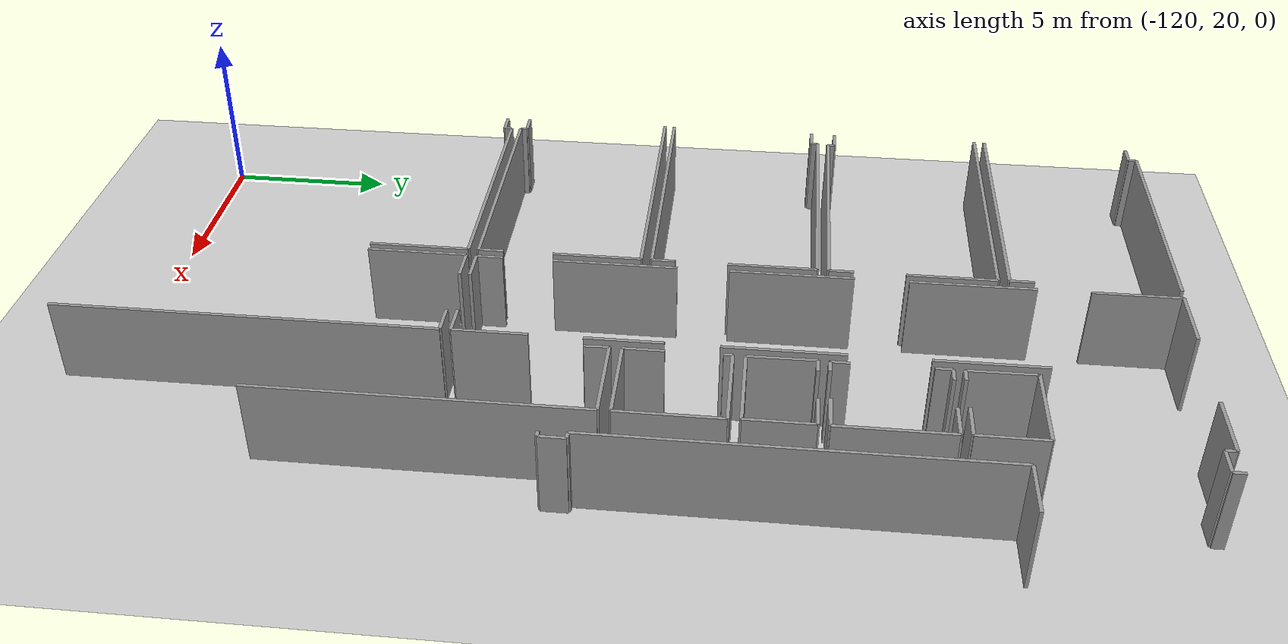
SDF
<sdf version="1.6">
 <world name="default">
  <model name="ground_plane">
   <static>1</static>
   <link name="link">
    <collision name="collision">
     <geometry><plane><normal>0 0 1</normal><size>100 100</size></plane></geometry>
     <surface><friction><ode><mu>100</mu><mu2>50</mu2></ode></friction></surface>
    </collision>
    <visual name="visual">
     <cast_shadows>0</cast_shadows>
     <geometry><plane><normal>0 0 1</normal><size>100 100</size></plane></geometry>
     <material>
      <script><uri>file://media/materials/scripts/gazebo.material</uri><name>Gazebo/Grey</name></script>
     </material>
    </visual>
   </link>
  </model>
  <model name="0510045926_A-40">
   <static>1</static>
   <link name="Wall_624">
    <collision name="Wall_624_Collision">
     <geometry><box><size>7.37211501241 0.1 2.5</size></box></geometry>
     <pose>3.6860575062 0 1.25 0 0 0</pose>
    </collision>
    <visual name="Wall_624_Visual">
     <pose>3.6860575062 0 1.25 0 0 0</pose>
     <geometry><box><size>7.37211501241 0.1 2.5</size></box></geometry>
     <material>
      <script><uri>file://media/materials/scripts/gazebo.material</uri><name>Gazebo/Grey</name></script>
      <ambient>1 1 1 1</ambient>
     </material>
    </visual>
    <pose>13.9335080561 -50.9273716073 0 0 0 0.0</pose>
   </link>
   <link name="Wall_626">
    <collision name="Wall_626_Collision">
     <geometry><box><size>0.708959722813 0.1 2.5</size></box></geometry>
     <pose>0.354479861406 0 1.25 0 0 0</pose>
    </collision>
    <visual name="Wall_626_Visual">
     <pose>0.354479861406 0 1.25 0 0 0</pose>
     <geometry><box><size>0.708959722813 0.1 2.5</size></box></geometry>
     <material>
      <script><uri>file://media/materials/scripts/gazebo.material</uri><name>Gazebo/Grey</name></script>
      <ambient>1 1 1 1</ambient>
     </material>
    </visual>
    <pose>21.3056230685 -55.015883693 0 0 0 -1.57079632679</pose>
   </link>
   <link name="Wall_627">
    <collision name="Wall_627_Collision">
     <geometry><box><size>7.99324800264 0.1 2.5</size></box></geometry>
     <pose>3.99662400132 0 1.25 0 0 0</pose>
    </collision>
    <visual name="Wall_627_Visual">
     <pose>3.99662400132 0 1.25 0 0 0</pose>
     <geometry><box><size>7.99324800264 0.1 2.5</size></box></geometry>
     <material>
      <script><uri>file://media/materials/scripts/gazebo.material</uri><name>Gazebo/Grey</name></script>
      <ambient>1 1 1 1</ambient>
     </material>
    </visual>
    <pose>21.3056230685 -55.7248434159 0 0 0 3.14159265359</pose>
   </link>
   <link name="Wall_628">
    <collision name="Wall_628_Collision">
     <geometry><box><size>0.627478852414 0.1 2.5</size></box></geometry>
     <pose>0.313739426207 0 1.25 0 0 0</pose>
    </collision>
    <visual name="Wall_628_Visual">
     <pose>0.313739426207 0 1.25 0 0 0</pose>
     <geometry><box><size>0.627478852414 0.1 2.5</size></box></geometry>
     <material>
      <script><uri>file://media/materials/scripts/gazebo.material</uri><name>Gazebo/Grey</name></script>
      <ambient>1 1 1 1</ambient>
     </material>
    </visual>
    <pose>13.3123750658 -51.1695297082 0 0 0 0.0</pose>
   </link>
   <link name="Wall_629">
    <collision name="Wall_629_Collision">
     <geometry><box><size>0.24224123463 0.1 2.5</size></box></geometry>
     <pose>0.121120617315 0 1.25 0 0 0</pose>
    </collision>
    <visual name="Wall_629_Visual">
     <pose>0.121120617315 0 1.25 0 0 0</pose>
     <geometry><box><size>0.24224123463 0.1 2.5</size></box></geometry>
     <material>
      <script><uri>file://media/materials/scripts/gazebo.material</uri><name>Gazebo/Grey</name></script>
      <ambient>1 1 1 1</ambient>
     </material>
    </visual>
    <pose>13.9398539183 -51.1695297082 0 0 0 1.59699578135</pose>
   </link>
   <link name="Wall_630">
    <collision name="Wall_630_Collision">
     <geometry><box><size>8.03157701021 0.1 2.5</size></box></geometry>
     <pose>4.01578850511 0 1.25 0 0 0</pose>
    </collision>
    <visual name="Wall_630_Visual">
     <pose>4.01578850511 0 1.25 0 0 0</pose>
     <geometry><box><size>8.03157701021 0.1 2.5</size></box></geometry>
     <material>
      <script><uri>file://media/materials/scripts/gazebo.material</uri><name>Gazebo/Grey</name></script>
      <ambient>1 1 1 1</ambient>
     </material>
    </visual>
    <pose>13.2913068034 -56.050513063 0 0 0 0.0</pose>
   </link>
   <link name="Wall_631">
    <collision name="Wall_631_Collision">
     <geometry><box><size>2.59571146634 0.1 2.5</size></box></geometry>
     <pose>1.29785573317 0 1.25 0 0 0</pose>
    </collision>
    <visual name="Wall_631_Visual">
     <pose>1.29785573317 0 1.25 0 0 0</pose>
     <geometry><box><size>2.59571146634 0.1 2.5</size></box></geometry>
     <material>
      <script><uri>file://media/materials/scripts/gazebo.material</uri><name>Gazebo/Grey</name></script>
      <ambient>1 1 1 1</ambient>
     </material>
    </visual>
    <pose>21.3228838136 -56.050513063 0 0 0 -1.57079632679</pose>
   </link>
   <link name="Wall_632">
    <collision name="Wall_632_Collision">
     <geometry><box><size>0.714036412557 0.1 2.5</size></box></geometry>
     <pose>0.357018206279 0 1.25 0 0 0</pose>
    </collision>
    <visual name="Wall_632_Visual">
     <pose>0.357018206279 0 1.25 0 0 0</pose>
     <geometry><box><size>0.714036412557 0.1 2.5</size></box></geometry>
     <material>
      <script><uri>file://media/materials/scripts/gazebo.material</uri><name>Gazebo/Grey</name></script>
      <ambient>1 1 1 1</ambient>
     </material>
    </visual>
    <pose>21.3228838136 -60.142324997 0 0 0 -1.57079632679</pose>
   </link>
   <link name="Wall_633">
    <collision name="Wall_633_Collision">
     <geometry><box><size>7.36120012946 0.1 2.5</size></box></geometry>
     <pose>3.68060006473 0 1.25 0 0 0</pose>
    </collision>
    <visual name="Wall_633_Visual">
     <pose>3.68060006473 0 1.25 0 0 0</pose>
     <geometry><box><size>7.36120012946 0.1 2.5</size></box></geometry>
     <material>
      <script><uri>file://media/materials/scripts/gazebo.material</uri><name>Gazebo/Grey</name></script>
      <ambient>1 1 1 1</ambient>
     </material>
    </visual>
    <pose>21.3228838136 -60.8563614095 0 0 0 3.14159265359</pose>
   </link>
   <link name="Wall_634">
    <collision name="Wall_634_Collision">
     <geometry><box><size>0.213728638241 0.1 2.5</size></box></geometry>
     <pose>0.106864319121 0 1.25 0 0 0</pose>
    </collision>
    <visual name="Wall_634_Visual">
     <pose>0.106864319121 0 1.25 0 0 0</pose>
     <geometry><box><size>0.213728638241 0.1 2.5</size></box></geometry>
     <material>
      <script><uri>file://media/materials/scripts/gazebo.material</uri><name>Gazebo/Grey</name></script>
      <ambient>1 1 1 1</ambient>
     </material>
    </visual>
    <pose>13.9616836842 -60.8563614095 0 0 0 1.57079632679</pose>
   </link>
   <link name="Wall_635">
    <collision name="Wall_635_Collision">
     <geometry><box><size>0.655908314983 0.1 2.5</size></box></geometry>
     <pose>0.327954157492 0 1.25 0 0 0</pose>
    </collision>
    <visual name="Wall_635_Visual">
     <pose>0.327954157492 0 1.25 0 0 0</pose>
     <geometry><box><size>0.655908314983 0.1 2.5</size></box></geometry>
     <material>
      <script><uri>file://media/materials/scripts/gazebo.material</uri><name>Gazebo/Grey</name></script>
      <ambient>1 1 1 1</ambient>
     </material>
    </visual>
    <pose>13.9616836842 -60.6426327713 0 0 0 3.14159265359</pose>
   </link>
   <link name="Wall_636">
    <collision name="Wall_636_Collision">
     <geometry><box><size>7.37084583997 0.1 2.5</size></box></geometry>
     <pose>3.68542291999 0 1.25 0 0 0</pose>
    </collision>
    <visual name="Wall_636_Visual">
     <pose>3.68542291999 0 1.25 0 0 0</pose>
     <geometry><box><size>7.37084583997 0.1 2.5</size></box></geometry>
     <material>
      <script><uri>file://media/materials/scripts/gazebo.material</uri><name>Gazebo/Grey</name></script>
      <ambient>1 1 1 1</ambient>
     </material>
    </visual>
    <pose>13.9426460976 -61.1898999258 0 0 0 0.0</pose>
   </link>
   <link name="Wall_637">
    <collision name="Wall_637_Collision">
     <geometry><box><size>2.58403507993 0.1 2.5</size></box></geometry>
     <pose>1.29201753996 0 1.25 0 0 0</pose>
    </collision>
    <visual name="Wall_637_Visual">
     <pose>1.29201753996 0 1.25 0 0 0</pose>
     <geometry><box><size>2.58403507993 0.1 2.5</size></box></geometry>
     <material>
      <script><uri>file://media/materials/scripts/gazebo.material</uri><name>Gazebo/Grey</name></script>
      <ambient>1 1 1 1</ambient>
     </material>
    </visual>
    <pose>21.3134919376 -61.1898999258 0 0 0 -1.57079632679</pose>
   </link>
   <link name="Wall_638">
    <collision name="Wall_638_Collision">
     <geometry><box><size>0.691698977682 0.1 2.5</size></box></geometry>
     <pose>0.345849488841 0 1.25 0 0 0</pose>
    </collision>
    <visual name="Wall_638_Visual">
     <pose>0.345849488841 0 1.25 0 0 0</pose>
     <geometry><box><size>0.691698977682 0.1 2.5</size></box></geometry>
     <material>
      <script><uri>file://media/materials/scripts/gazebo.material</uri><name>Gazebo/Grey</name></script>
      <ambient>1 1 1 1</ambient>
     </material>
    </visual>
    <pose>21.3134919376 -65.3007494463 0 0 0 -1.57079632679</pose>
   </link>
   <link name="Wall_639">
    <collision name="Wall_639_Collision">
     <geometry><box><size>8.02015445829 0.1 2.5</size></box></geometry>
     <pose>4.01007722914 0 1.25 0 0 0</pose>
    </collision>
    <visual name="Wall_639_Visual">
     <pose>4.01007722914 0 1.25 0 0 0</pose>
     <geometry><box><size>8.02015445829 0.1 2.5</size></box></geometry>
     <material>
      <script><uri>file://media/materials/scripts/gazebo.material</uri><name>Gazebo/Grey</name></script>
      <ambient>1 1 1 1</ambient>
     </material>
    </visual>
    <pose>21.3134919376 -65.992448424 0 0 0 3.14159265359</pose>
   </link>
   <link name="Wall_640">
    <collision name="Wall_640_Collision">
     <geometry><box><size>0.635093887031 0.1 2.5</size></box></geometry>
     <pose>0.317546943515 0 1.25 0 0 0</pose>
    </collision>
    <visual name="Wall_640_Visual">
     <pose>0.317546943515 0 1.25 0 0 0</pose>
     <geometry><box><size>0.635093887031 0.1 2.5</size></box></geometry>
     <material>
      <script><uri>file://media/materials/scripts/gazebo.material</uri><name>Gazebo/Grey</name></script>
      <ambient>1 1 1 1</ambient>
     </material>
    </visual>
    <pose>13.2933374793 -61.3998210467 0 0 0 0.0</pose>
   </link>
   <link name="Wall_641">
    <collision name="Wall_641_Collision">
     <geometry><box><size>0.210401843146 0.1 2.5</size></box></geometry>
     <pose>0.105200921573 0 1.25 0 0 0</pose>
    </collision>
    <visual name="Wall_641_Visual">
     <pose>0.105200921573 0 1.25 0 0 0</pose>
     <geometry><box><size>0.210401843146 0.1 2.5</size></box></geometry>
     <material>
      <script><uri>file://media/materials/scripts/gazebo.material</uri><name>Gazebo/Grey</name></script>
      <ambient>1 1 1 1</ambient>
     </material>
    </visual>
    <pose>13.9284313663 -61.3998210467 0 0 0 1.50318490844</pose>
   </link>
   <link name="Wall_642">
    <collision name="Wall_642_Collision">
     <geometry><box><size>8.02421581008 0.1 2.5</size></box></geometry>
     <pose>4.01210790504 0 1.25 0 0 0</pose>
    </collision>
    <visual name="Wall_642_Visual">
     <pose>4.01210790504 0 1.25 0 0 0</pose>
     <geometry><box><size>8.02421581008 0.1 2.5</size></box></geometry>
     <material>
      <script><uri>file://media/materials/scripts/gazebo.material</uri><name>Gazebo/Grey</name></script>
      <ambient>1 1 1 1</ambient>
     </material>
    </visual>
    <pose>13.2852147757 -66.3069493537 0 0 0 0.0</pose>
   </link>
   <link name="Wall_643">
    <collision name="Wall_643_Collision">
     <geometry><box><size>2.60332650096 0.1 2.5</size></box></geometry>
     <pose>1.30166325048 0 1.25 0 0 0</pose>
    </collision>
    <visual name="Wall_643_Visual">
     <pose>1.30166325048 0 1.25 0 0 0</pose>
     <geometry><box><size>2.60332650096 0.1 2.5</size></box></geometry>
     <material>
      <script><uri>file://media/materials/scripts/gazebo.material</uri><name>Gazebo/Grey</name></script>
      <ambient>1 1 1 1</ambient>
     </material>
    </visual>
    <pose>21.3094305858 -66.3069493537 0 0 0 -1.57079632679</pose>
   </link>
   <link name="Wall_644">
    <collision name="Wall_644_Collision">
     <geometry><box><size>0.739166026792 0.1 2.5</size></box></geometry>
     <pose>0.369583013396 0 1.25 0 0 0</pose>
    </collision>
    <visual name="Wall_644_Visual">
     <pose>0.369583013396 0 1.25 0 0 0</pose>
     <geometry><box><size>0.739166026792 0.1 2.5</size></box></geometry>
     <material>
      <script><uri>file://media/materials/scripts/gazebo.material</uri><name>Gazebo/Grey</name></script>
      <ambient>1 1 1 1</ambient>
     </material>
    </visual>
    <pose>21.3094305858 -70.3789621977 0 0 0 -1.57079632679</pose>
   </link>
   <link name="Wall_645">
    <collision name="Wall_645_Collision">
     <geometry><box><size>7.37541486074 0.1 2.5</size></box></geometry>
     <pose>3.68770743037 0 1.25 0 0 0</pose>
    </collision>
    <visual name="Wall_645_Visual">
     <pose>3.68770743037 0 1.25 0 0 0</pose>
     <geometry><box><size>7.37541486074 0.1 2.5</size></box></geometry>
     <material>
      <script><uri>file://media/materials/scripts/gazebo.material</uri><name>Gazebo/Grey</name></script>
      <ambient>1 1 1 1</ambient>
     </material>
    </visual>
    <pose>21.3094305858 -71.1181282245 0 0 0 3.14159265359</pose>
   </link>
   <link name="Wall_646">
    <collision name="Wall_646_Collision">
     <geometry><box><size>0.208651948497 0.1 2.5</size></box></geometry>
     <pose>0.104325974248 0 1.25 0 0 0</pose>
    </collision>
    <visual name="Wall_646_Visual">
     <pose>0.104325974248 0 1.25 0 0 0</pose>
     <geometry><box><size>0.208651948497 0.1 2.5</size></box></geometry>
     <material>
      <script><uri>file://media/materials/scripts/gazebo.material</uri><name>Gazebo/Grey</name></script>
      <ambient>1 1 1 1</ambient>
     </material>
    </visual>
    <pose>13.934015725 -71.1181282245 0 0 0 1.57079632679</pose>
   </link>
   <link name="Wall_647">
    <collision name="Wall_647_Collision">
     <geometry><box><size>0.640424411263 0.1 2.5</size></box></geometry>
     <pose>0.320212205631 0 1.25 0 0 0</pose>
    </collision>
    <visual name="Wall_647_Visual">
     <pose>0.320212205631 0 1.25 0 0 0</pose>
     <geometry><box><size>0.640424411263 0.1 2.5</size></box></geometry>
     <material>
      <script><uri>file://media/materials/scripts/gazebo.material</uri><name>Gazebo/Grey</name></script>
      <ambient>1 1 1 1</ambient>
     </material>
    </visual>
    <pose>13.934015725 -70.909476276 0 0 0 3.14159265359</pose>
   </link>
   <link name="Wall_651">
    <collision name="Wall_651_Collision">
     <geometry><box><size>2.62084108057 0.1 2.5</size></box></geometry>
     <pose>1.31042054029 0 1.25 0 0 0</pose>
    </collision>
    <visual name="Wall_651_Visual">
     <pose>1.31042054029 0 1.25 0 0 0</pose>
     <geometry><box><size>2.62084108057 0.1 2.5</size></box></geometry>
     <material>
      <script><uri>file://media/materials/scripts/gazebo.material</uri><name>Gazebo/Grey</name></script>
      <ambient>1 1 1 1</ambient>
     </material>
    </visual>
    <pose>25.5994872543 -66.7265377611 0 0 0 0.0</pose>
   </link>
   <link name="Wall_652">
    <collision name="Wall_652_Collision">
     <geometry><box><size>9.40076023429 0.1 2.5</size></box></geometry>
     <pose>4.70038011714 0 1.25 0 0 0</pose>
    </collision>
    <visual name="Wall_652_Visual">
     <pose>4.70038011714 0 1.25 0 0 0</pose>
     <geometry><box><size>9.40076023429 0.1 2.5</size></box></geometry>
     <material>
      <script><uri>file://media/materials/scripts/gazebo.material</uri><name>Gazebo/Grey</name></script>
      <ambient>1 1 1 1</ambient>
     </material>
    </visual>
    <pose>28.2203283349 -66.7265377611 0 0 0 -1.57079632679</pose>
   </link>
   <link name="Wall_654">
    <collision name="Wall_654_Collision">
     <geometry><box><size>0.69102852971 0.1 2.5</size></box></geometry>
     <pose>0.345514264855 0 1.25 0 0 0</pose>
    </collision>
    <visual name="Wall_654_Visual">
     <pose>0.345514264855 0 1.25 0 0 0</pose>
     <geometry><box><size>0.69102852971 0.1 2.5</size></box></geometry>
     <material>
      <script><uri>file://media/materials/scripts/gazebo.material</uri><name>Gazebo/Grey</name></script>
      <ambient>1 1 1 1</ambient>
     </material>
    </visual>
    <pose>25.6213170202 -67.4172214008 0 0 0 1.60239183611</pose>
   </link>
   <link name="Wall_655">
    <collision name="Wall_655_Collision">
     <geometry><box><size>2.62896378416 0.1 2.5</size></box></geometry>
     <pose>1.31448189208 0 1.25 0 0 0</pose>
    </collision>
    <visual name="Wall_655_Visual">
     <pose>1.31448189208 0 1.25 0 0 0</pose>
     <geometry><box><size>2.62896378416 0.1 2.5</size></box></geometry>
     <material>
      <script><uri>file://media/materials/scripts/gazebo.material</uri><name>Gazebo/Grey</name></script>
      <ambient>1 1 1 1</ambient>
     </material>
    </visual>
    <pose>25.5916183852 -63.4190743925 0 0 0 0.0</pose>
   </link>
   <link name="Wall_656">
    <collision name="Wall_656_Collision">
     <geometry><box><size>2.95793327961 0.1 2.5</size></box></geometry>
     <pose>1.4789666398 0 1.25 0 0 0</pose>
    </collision>
    <visual name="Wall_656_Visual">
     <pose>1.4789666398 0 1.25 0 0 0</pose>
     <geometry><box><size>2.95793327961 0.1 2.5</size></box></geometry>
     <material>
      <script><uri>file://media/materials/scripts/gazebo.material</uri><name>Gazebo/Grey</name></script>
      <ambient>1 1 1 1</ambient>
     </material>
    </visual>
    <pose>28.2205821694 -63.4190743925 0 0 0 -1.57079632679</pose>
   </link>
   <link name="Wall_657">
    <collision name="Wall_657_Collision">
     <geometry><box><size>2.6124645425 0.1 2.5</size></box></geometry>
     <pose>1.30623227125 0 1.25 0 0 0</pose>
    </collision>
    <visual name="Wall_657_Visual">
     <pose>1.30623227125 0 1.25 0 0 0</pose>
     <geometry><box><size>2.6124645425 0.1 2.5</size></box></geometry>
     <material>
      <script><uri>file://media/materials/scripts/gazebo.material</uri><name>Gazebo/Grey</name></script>
      <ambient>1 1 1 1</ambient>
     </material>
    </visual>
    <pose>28.2205821694 -66.3770076721 0 0 0 3.14159265359</pose>
   </link>
   <link name="Wall_658">
    <collision name="Wall_658_Collision">
     <geometry><box><size>1.14682421327 0.1 2.5</size></box></geometry>
     <pose>0.573412106636 0 1.25 0 0 0</pose>
    </collision>
    <visual name="Wall_658_Visual">
     <pose>0.573412106636 0 1.25 0 0 0</pose>
     <geometry><box><size>1.14682421327 0.1 2.5</size></box></geometry>
     <material>
      <script><uri>file://media/materials/scripts/gazebo.material</uri><name>Gazebo/Grey</name></script>
      <ambient>1 1 1 1</ambient>
     </material>
    </visual>
    <pose>25.6081176269 -66.3770076721 0 0 0 1.57079632679</pose>
   </link>
   <link name="Wall_659">
    <collision name="Wall_659_Collision">
     <geometry><box><size>0.244239037097 0.1 2.5</size></box></geometry>
     <pose>0.122119518548 0 1.25 0 0 0</pose>
    </collision>
    <visual name="Wall_659_Visual">
     <pose>0.122119518548 0 1.25 0 0 0</pose>
     <geometry><box><size>0.244239037097 0.1 2.5</size></box></geometry>
     <material>
      <script><uri>file://media/materials/scripts/gazebo.material</uri><name>Gazebo/Grey</name></script>
      <ambient>1 1 1 1</ambient>
     </material>
    </visual>
    <pose>25.6081176269 -63.6627555003 0 0 0 1.63840147603</pose>
   </link>
   <link name="Wall_660">
    <collision name="Wall_660_Collision">
     <geometry><box><size>0.466293953028 0.1 2.5</size></box></geometry>
     <pose>0.233146976514 0 1.25 0 0 0</pose>
    </collision>
    <visual name="Wall_660_Visual">
     <pose>0.233146976514 0 1.25 0 0 0</pose>
     <geometry><box><size>0.466293953028 0.1 2.5</size></box></geometry>
     <material>
      <script><uri>file://media/materials/scripts/gazebo.material</uri><name>Gazebo/Grey</name></script>
      <ambient>1 1 1 1</ambient>
     </material>
    </visual>
    <pose>25.5916183852 -61.1541092631 0 0 0 0.0</pose>
   </link>
   <link name="Wall_661">
    <collision name="Wall_661_Collision">
     <geometry><box><size>1.01990696966 0.1 2.5</size></box></geometry>
     <pose>0.50995348483 0 1.25 0 0 0</pose>
    </collision>
    <visual name="Wall_661_Visual">
     <pose>0.50995348483 0 1.25 0 0 0</pose>
     <geometry><box><size>1.01990696966 0.1 2.5</size></box></geometry>
     <material>
      <script><uri>file://media/materials/scripts/gazebo.material</uri><name>Gazebo/Grey</name></script>
      <ambient>1 1 1 1</ambient>
     </material>
    </visual>
    <pose>27.1735149096 -61.1541092631 0 0 0 0.0</pose>
   </link>
   <link name="Wall_662">
    <collision name="Wall_662_Collision">
     <geometry><box><size>1.91568887507 0.1 2.5</size></box></geometry>
     <pose>0.957844437535 0 1.25 0 0 0</pose>
    </collision>
    <visual name="Wall_662_Visual">
     <pose>0.957844437535 0 1.25 0 0 0</pose>
     <geometry><box><size>1.91568887507 0.1 2.5</size></box></geometry>
     <material>
      <script><uri>file://media/materials/scripts/gazebo.material</uri><name>Gazebo/Grey</name></script>
      <ambient>1 1 1 1</ambient>
     </material>
    </visual>
    <pose>28.1934218793 -61.1541092631 0 0 0 -1.57079632679</pose>
   </link>
   <link name="Wall_663">
    <collision name="Wall_663_Collision">
     <geometry><box><size>2.58428891441 0.1 2.5</size></box></geometry>
     <pose>1.29214445721 0 1.25 0 0 0</pose>
    </collision>
    <visual name="Wall_663_Visual">
     <pose>1.29214445721 0 1.25 0 0 0</pose>
     <geometry><box><size>2.58428891441 0.1 2.5</size></box></geometry>
     <material>
      <script><uri>file://media/materials/scripts/gazebo.material</uri><name>Gazebo/Grey</name></script>
      <ambient>1 1 1 1</ambient>
     </material>
    </visual>
    <pose>28.1934218793 -63.0697981381 0 0 0 3.14159265359</pose>
   </link>
   <link name="Wall_664">
    <collision name="Wall_664_Collision">
     <geometry><box><size>1.91576893872 0.1 2.5</size></box></geometry>
     <pose>0.95788446936 0 1.25 0 0 0</pose>
    </collision>
    <visual name="Wall_664_Visual">
     <pose>0.95788446936 0 1.25 0 0 0</pose>
     <geometry><box><size>1.91576893872 0.1 2.5</size></box></geometry>
     <material>
      <script><uri>file://media/materials/scripts/gazebo.material</uri><name>Gazebo/Grey</name></script>
      <ambient>1 1 1 1</ambient>
     </material>
    </visual>
    <pose>25.6091329649 -63.0697981381 0 0 0 1.57993877778</pose>
   </link>
   <link name="Wall_665">
    <collision name="Wall_665_Collision">
     <geometry><box><size>2.60459567339 0.1 2.5</size></box></geometry>
     <pose>1.3022978367 0 1.25 0 0 0</pose>
    </collision>
    <visual name="Wall_665_Visual">
     <pose>1.3022978367 0 1.25 0 0 0</pose>
     <geometry><box><size>2.60459567339 0.1 2.5</size></box></geometry>
     <material>
      <script><uri>file://media/materials/scripts/gazebo.material</uri><name>Gazebo/Grey</name></script>
      <ambient>1 1 1 1</ambient>
     </material>
    </visual>
    <pose>25.6005025923 -55.3905433962 0 0 0 0.0</pose>
   </link>
   <link name="Wall_666">
    <collision name="Wall_666_Collision">
     <geometry><box><size>1.92279624071 0.1 2.5</size></box></geometry>
     <pose>0.961398120356 0 1.25 0 0 0</pose>
    </collision>
    <visual name="Wall_666_Visual">
     <pose>0.961398120356 0 1.25 0 0 0</pose>
     <geometry><box><size>1.92279624071 0.1 2.5</size></box></geometry>
     <material>
      <script><uri>file://media/materials/scripts/gazebo.material</uri><name>Gazebo/Grey</name></script>
      <ambient>1 1 1 1</ambient>
     </material>
    </visual>
    <pose>28.2050982657 -55.3905433962 0 0 0 -1.57079632679</pose>
   </link>
   <link name="Wall_667">
    <collision name="Wall_667_Collision">
     <geometry><box><size>1.07042003262 0.1 2.5</size></box></geometry>
     <pose>0.535210016309 0 1.25 0 0 0</pose>
    </collision>
    <visual name="Wall_667_Visual">
     <pose>0.535210016309 0 1.25 0 0 0</pose>
     <geometry><box><size>1.07042003262 0.1 2.5</size></box></geometry>
     <material>
      <script><uri>file://media/materials/scripts/gazebo.material</uri><name>Gazebo/Grey</name></script>
      <ambient>1 1 1 1</ambient>
     </material>
    </visual>
    <pose>28.2050982657 -57.3133396369 0 0 0 3.14159265359</pose>
   </link>
   <link name="Wall_668">
    <collision name="Wall_668_Collision">
     <geometry><box><size>0.401819993273 0.1 2.5</size></box></geometry>
     <pose>0.200909996637 0 1.25 0 0 0</pose>
    </collision>
    <visual name="Wall_668_Visual">
     <pose>0.200909996637 0 1.25 0 0 0</pose>
     <geometry><box><size>0.401819993273 0.1 2.5</size></box></geometry>
     <material>
      <script><uri>file://media/materials/scripts/gazebo.material</uri><name>Gazebo/Grey</name></script>
      <ambient>1 1 1 1</ambient>
     </material>
    </visual>
    <pose>26.0165373168 -57.3133396369 0 0 0 3.14159265359</pose>
   </link>
   <link name="Wall_669">
    <collision name="Wall_669_Collision">
     <geometry><box><size>1.92284878289 0.1 2.5</size></box></geometry>
     <pose>0.961424391447 0 1.25 0 0 0</pose>
    </collision>
    <visual name="Wall_669_Visual">
     <pose>0.961424391447 0 1.25 0 0 0</pose>
     <geometry><box><size>1.92284878289 0.1 2.5</size></box></geometry>
     <material>
      <script><uri>file://media/materials/scripts/gazebo.material</uri><name>Gazebo/Grey</name></script>
      <ambient>1 1 1 1</ambient>
     </material>
    </visual>
    <pose>25.6147173236 -57.3133396369 0 0 0 1.5781889314</pose>
   </link>
   <link name="Wall_670">
    <collision name="Wall_670_Collision">
     <geometry><box><size>0.44141817328 0.1 2.5</size></box></geometry>
     <pose>0.22070908664 0 1.25 0 0 0</pose>
    </collision>
    <visual name="Wall_670_Visual">
     <pose>0.22070908664 0 1.25 0 0 0</pose>
     <geometry><box><size>0.44141817328 0.1 2.5</size></box></geometry>
     <material>
      <script><uri>file://media/materials/scripts/gazebo.material</uri><name>Gazebo/Grey</name></script>
      <ambient>1 1 1 1</ambient>
     </material>
    </visual>
    <pose>25.5999949233 -57.6268252286 0 0 0 0.0</pose>
   </link>
   <link name="Wall_671">
    <collision name="Wall_671_Collision">
     <geometry><box><size>1.05671297031 0.1 2.5</size></box></geometry>
     <pose>0.528356485154 0 1.25 0 0 0</pose>
    </collision>
    <visual name="Wall_671_Visual">
     <pose>0.528356485154 0 1.25 0 0 0</pose>
     <geometry><box><size>1.05671297031 0.1 2.5</size></box></geometry>
     <material>
      <script><uri>file://media/materials/scripts/gazebo.material</uri><name>Gazebo/Grey</name></script>
      <ambient>1 1 1 1</ambient>
     </material>
    </visual>
    <pose>27.1567618334 -57.6268252286 0 0 0 0.0</pose>
   </link>
   <link name="Wall_672">
    <collision name="Wall_672_Collision">
     <geometry><box><size>3.21151393234 0.1 2.5</size></box></geometry>
     <pose>1.60575696617 0 1.25 0 0 0</pose>
    </collision>
    <visual name="Wall_672_Visual">
     <pose>1.60575696617 0 1.25 0 0 0</pose>
     <geometry><box><size>3.21151393234 0.1 2.5</size></box></geometry>
     <material>
      <script><uri>file://media/materials/scripts/gazebo.material</uri><name>Gazebo/Grey</name></script>
      <ambient>1 1 1 1</ambient>
     </material>
    </visual>
    <pose>28.2134748038 -57.6268252286 0 0 0 -1.57079632679</pose>
   </link>
   <link name="Wall_673">
    <collision name="Wall_673_Collision">
     <geometry><box><size>1.08336559147 0.1 2.5</size></box></geometry>
     <pose>0.541682795733 0 1.25 0 0 0</pose>
    </collision>
    <visual name="Wall_673_Visual">
     <pose>0.541682795733 0 1.25 0 0 0</pose>
     <geometry><box><size>1.08336559147 0.1 2.5</size></box></geometry>
     <material>
      <script><uri>file://media/materials/scripts/gazebo.material</uri><name>Gazebo/Grey</name></script>
      <ambient>1 1 1 1</ambient>
     </material>
    </visual>
    <pose>28.2134748038 -60.838339161 0 0 0 3.14159265359</pose>
   </link>
   <link name="Wall_674">
    <collision name="Wall_674_Collision">
     <geometry><box><size>0.398266310452 0.1 2.5</size></box></geometry>
     <pose>0.199133155226 0 1.25 0 0 0</pose>
    </collision>
    <visual name="Wall_674_Visual">
     <pose>0.199133155226 0 1.25 0 0 0</pose>
     <geometry><box><size>0.398266310452 0.1 2.5</size></box></geometry>
     <material>
      <script><uri>file://media/materials/scripts/gazebo.material</uri><name>Gazebo/Grey</name></script>
      <ambient>1 1 1 1</ambient>
     </material>
    </visual>
    <pose>26.0086684477 -60.838339161 0 0 0 3.14159265359</pose>
   </link>
   <link name="Wall_675">
    <collision name="Wall_675_Collision">
     <geometry><box><size>0.532544754193 0.1 2.5</size></box></geometry>
     <pose>0.266272377097 0 1.25 0 0 0</pose>
    </collision>
    <visual name="Wall_675_Visual">
     <pose>0.266272377097 0 1.25 0 0 0</pose>
     <geometry><box><size>0.532544754193 0.1 2.5</size></box></geometry>
     <material>
      <script><uri>file://media/materials/scripts/gazebo.material</uri><name>Gazebo/Grey</name></script>
      <ambient>1 1 1 1</ambient>
     </material>
    </visual>
    <pose>25.6104021373 -60.838339161 0 0 0 1.57079632679</pose>
   </link>
   <link name="Wall_676">
    <collision name="Wall_676_Collision">
     <geometry><box><size>0.474023246975 0.1 2.5</size></box></geometry>
     <pose>0.237011623488 0 1.25 0 0 0</pose>
    </collision>
    <visual name="Wall_676_Visual">
     <pose>0.237011623488 0 1.25 0 0 0</pose>
     <geometry><box><size>0.474023246975 0.1 2.5</size></box></geometry>
     <material>
      <script><uri>file://media/materials/scripts/gazebo.material</uri><name>Gazebo/Grey</name></script>
      <ambient>1 1 1 1</ambient>
     </material>
    </visual>
    <pose>25.6104021373 -58.1007342163 0 0 0 1.59275316185</pose>
   </link>
   <link name="Wall_710">
    <collision name="Wall_710_Collision">
     <geometry><box><size>0.194437217213 0.1 2.5</size></box></geometry>
     <pose>0.0972186086063 0 1.25 0 0 0</pose>
    </collision>
    <visual name="Wall_710_Visual">
     <pose>0.0972186086063 0 1.25 0 0 0</pose>
     <geometry><box><size>0.194437217213 0.1 2.5</size></box></geometry>
     <material>
      <script><uri>file://media/materials/scripts/gazebo.material</uri><name>Gazebo/Grey</name></script>
      <ambient>1 1 1 1</ambient>
     </material>
    </visual>
    <pose>29.1866762278 -68.0853137712 0 0 0 0.0</pose>
   </link>
   <link name="Wall_711">
    <collision name="Wall_711_Collision">
     <geometry><box><size>0.752873089102 0.1 2.5</size></box></geometry>
     <pose>0.376436544551 0 1.25 0 0 0</pose>
    </collision>
    <visual name="Wall_711_Visual">
     <pose>0.376436544551 0 1.25 0 0 0</pose>
     <geometry><box><size>0.752873089102 0.1 2.5</size></box></geometry>
     <material>
      <script><uri>file://media/materials/scripts/gazebo.material</uri><name>Gazebo/Grey</name></script>
      <ambient>1 1 1 1</ambient>
     </material>
    </visual>
    <pose>29.381113445 -68.0853137712 0 0 0 1.57079632679</pose>
   </link>
   <link name="Wall_712">
    <collision name="Wall_712_Collision">
     <geometry><box><size>0.219566831448 0.1 2.5</size></box></geometry>
     <pose>0.109783415724 0 1.25 0 0 0</pose>
    </collision>
    <visual name="Wall_712_Visual">
     <pose>0.109783415724 0 1.25 0 0 0</pose>
     <geometry><box><size>0.219566831448 0.1 2.5</size></box></geometry>
     <material>
      <script><uri>file://media/materials/scripts/gazebo.material</uri><name>Gazebo/Grey</name></script>
      <ambient>1 1 1 1</ambient>
     </material>
    </visual>
    <pose>29.381113445 -67.3324406821 0 0 0 3.14159265359</pose>
   </link>
   <link name="Wall_713">
    <collision name="Wall_713_Collision">
     <geometry><box><size>11.3565549583 0.1 2.5</size></box></geometry>
     <pose>5.67827747917 0 1.25 0 0 0</pose>
    </collision>
    <visual name="Wall_713_Visual">
     <pose>5.67827747917 0 1.25 0 0 0</pose>
     <geometry><box><size>11.3565549583 0.1 2.5</size></box></geometry>
     <material>
      <script><uri>file://media/materials/scripts/gazebo.material</uri><name>Gazebo/Grey</name></script>
      <ambient>1 1 1 1</ambient>
     </material>
    </visual>
    <pose>29.1615466135 -67.3324406821 0 0 0 1.57079632679</pose>
   </link>
   <link name="Wall_714">
    <collision name="Wall_714_Collision">
     <geometry><box><size>1.64383213925 0.1 2.5</size></box></geometry>
     <pose>0.821916069627 0 1.25 0 0 0</pose>
    </collision>
    <visual name="Wall_714_Visual">
     <pose>0.821916069627 0 1.25 0 0 0</pose>
     <geometry><box><size>1.64383213925 0.1 2.5</size></box></geometry>
     <material>
      <script><uri>file://media/materials/scripts/gazebo.material</uri><name>Gazebo/Grey</name></script>
      <ambient>1 1 1 1</ambient>
     </material>
    </visual>
    <pose>29.1615466135 -55.9758857237 0 0 0 0.0</pose>
   </link>
   <link name="Wall_744">
    <collision name="Wall_744_Collision">
     <geometry><box><size>3.1069341236 0.1 2.5</size></box></geometry>
     <pose>1.5534670618 0 1.25 0 0 0</pose>
    </collision>
    <visual name="Wall_744_Visual">
     <pose>1.5534670618 0 1.25 0 0 0</pose>
     <geometry><box><size>3.1069341236 0.1 2.5</size></box></geometry>
     <material>
      <script><uri>file://media/materials/scripts/gazebo.material</uri><name>Gazebo/Grey</name></script>
      <ambient>1 1 1 1</ambient>
     </material>
    </visual>
    <pose>25.2644257312 -55.0397441348 0 0 0 -1.57079632679</pose>
   </link>
   <link name="Wall_745">
    <collision name="Wall_745_Collision">
     <geometry><box><size>3.4049358116 0.1 2.5</size></box></geometry>
     <pose>1.7024679058 0 1.25 0 0 0</pose>
    </collision>
    <visual name="Wall_745_Visual">
     <pose>1.7024679058 0 1.25 0 0 0</pose>
     <geometry><box><size>3.4049358116 0.1 2.5</size></box></geometry>
     <material>
      <script><uri>file://media/materials/scripts/gazebo.material</uri><name>Gazebo/Grey</name></script>
      <ambient>1 1 1 1</ambient>
     </material>
    </visual>
    <pose>25.2644257312 -60.3639225043 0 0 0 -1.57079632679</pose>
   </link>
   <link name="Wall_746">
    <collision name="Wall_746_Collision">
     <geometry><box><size>2.21521356999 0.1 2.5</size></box></geometry>
     <pose>1.107606785 0 1.25 0 0 0</pose>
    </collision>
    <visual name="Wall_746_Visual">
     <pose>1.107606785 0 1.25 0 0 0</pose>
     <geometry><box><size>2.21521356999 0.1 2.5</size></box></geometry>
     <material>
      <script><uri>file://media/materials/scripts/gazebo.material</uri><name>Gazebo/Grey</name></script>
      <ambient>1 1 1 1</ambient>
     </material>
    </visual>
    <pose>25.2644257312 -65.2647049491 0 0 0 -1.57079632679</pose>
   </link>
   <link name="Wall_747">
    <collision name="Wall_747_Collision">
     <geometry><box><size>2.13322503062 0.1 2.5</size></box></geometry>
     <pose>1.06661251531 0 1.25 0 0 0</pose>
    </collision>
    <visual name="Wall_747_Visual">
     <pose>1.06661251531 0 1.25 0 0 0</pose>
     <geometry><box><size>2.13322503062 0.1 2.5</size></box></geometry>
     <material>
      <script><uri>file://media/materials/scripts/gazebo.material</uri><name>Gazebo/Grey</name></script>
      <ambient>1 1 1 1</ambient>
     </material>
    </visual>
    <pose>25.2644257312 -68.9854108628 0 0 0 -1.57079632679</pose>
   </link>
   <link name="Wall_748">
    <collision name="Wall_748_Collision">
     <geometry><box><size>0.919642347207 0.1 2.5</size></box></geometry>
     <pose>0.459821173604 0 1.25 0 0 0</pose>
    </collision>
    <visual name="Wall_748_Visual">
     <pose>0.459821173604 0 1.25 0 0 0</pose>
     <geometry><box><size>0.919642347207 0.1 2.5</size></box></geometry>
     <material>
      <script><uri>file://media/materials/scripts/gazebo.material</uri><name>Gazebo/Grey</name></script>
      <ambient>1 1 1 1</ambient>
     </material>
    </visual>
    <pose>25.2644257312 -71.1186358935 0 0 0 3.14159265359</pose>
   </link>
   <link name="Wall_749">
    <collision name="Wall_749_Collision">
     <geometry><box><size>0.97421676196 0.1 2.5</size></box></geometry>
     <pose>0.48710838098 0 1.25 0 0 0</pose>
    </collision>
    <visual name="Wall_749_Visual">
     <pose>0.48710838098 0 1.25 0 0 0</pose>
     <geometry><box><size>0.97421676196 0.1 2.5</size></box></geometry>
     <material>
      <script><uri>file://media/materials/scripts/gazebo.material</uri><name>Gazebo/Grey</name></script>
      <ambient>1 1 1 1</ambient>
     </material>
    </visual>
    <pose>22.6283545814 -71.1186358935 0 0 0 3.14159265359</pose>
   </link>
   <link name="Wall_750">
    <collision name="Wall_750_Collision">
     <geometry><box><size>0.780794882697 0.1 2.5</size></box></geometry>
     <pose>0.390397441348 0 1.25 0 0 0</pose>
    </collision>
    <visual name="Wall_750_Visual">
     <pose>0.390397441348 0 1.25 0 0 0</pose>
     <geometry><box><size>0.780794882697 0.1 2.5</size></box></geometry>
     <material>
      <script><uri>file://media/materials/scripts/gazebo.material</uri><name>Gazebo/Grey</name></script>
      <ambient>1 1 1 1</ambient>
     </material>
    </visual>
    <pose>21.6541378194 -71.1186358935 0 0 0 1.57079632679</pose>
   </link>
   <link name="Wall_751">
    <collision name="Wall_751_Collision">
     <geometry><box><size>3.645317071 0.1 2.5</size></box></geometry>
     <pose>1.8226585355 0 1.25 0 0 0</pose>
    </collision>
    <visual name="Wall_751_Visual">
     <pose>1.8226585355 0 1.25 0 0 0</pose>
     <geometry><box><size>3.645317071 0.1 2.5</size></box></geometry>
     <material>
      <script><uri>file://media/materials/scripts/gazebo.material</uri><name>Gazebo/Grey</name></script>
      <ambient>1 1 1 1</ambient>
     </material>
    </visual>
    <pose>21.6541378194 -68.8551937709 0 0 0 1.57079632679</pose>
   </link>
   <link name="Wall_752">
    <collision name="Wall_752_Collision">
     <geometry><box><size>3.58058927676 0.1 2.5</size></box></geometry>
     <pose>1.79029463838 0 1.25 0 0 0</pose>
    </collision>
    <visual name="Wall_752_Visual">
     <pose>1.79029463838 0 1.25 0 0 0</pose>
     <geometry><box><size>3.58058927676 0.1 2.5</size></box></geometry>
     <material>
      <script><uri>file://media/materials/scripts/gazebo.material</uri><name>Gazebo/Grey</name></script>
      <ambient>1 1 1 1</ambient>
     </material>
    </visual>
    <pose>21.6541378194 -63.707938039 0 0 0 1.57079632679</pose>
   </link>
   <link name="Wall_753">
    <collision name="Wall_753_Collision">
     <geometry><box><size>3.58465062856 0.1 2.5</size></box></geometry>
     <pose>1.79232531428 0 1.25 0 0 0</pose>
    </collision>
    <visual name="Wall_753_Visual">
     <pose>1.79232531428 0 1.25 0 0 0</pose>
     <geometry><box><size>3.58465062856 0.1 2.5</size></box></geometry>
     <material>
      <script><uri>file://media/materials/scripts/gazebo.material</uri><name>Gazebo/Grey</name></script>
      <ambient>1 1 1 1</ambient>
     </material>
    </visual>
    <pose>21.6541378194 -58.563220652 0 0 0 1.57079632679</pose>
   </link>
   <link name="Wall_754">
    <collision name="Wall_754_Collision">
     <geometry><box><size>2.53555269287 0.1 2.5</size></box></geometry>
     <pose>1.26777634643 0 1.25 0 0 0</pose>
    </collision>
    <visual name="Wall_754_Visual">
     <pose>1.26777634643 0 1.25 0 0 0</pose>
     <geometry><box><size>2.53555269287 0.1 2.5</size></box></geometry>
     <material>
      <script><uri>file://media/materials/scripts/gazebo.material</uri><name>Gazebo/Grey</name></script>
      <ambient>1 1 1 1</ambient>
     </material>
    </visual>
    <pose>21.6541378194 -53.4806927143 0 0 0 1.57079632679</pose>
   </link>
   <link name="Wall_755">
    <collision name="Wall_755_Collision">
     <geometry><box><size>1.9230500752 0.1 2.5</size></box></geometry>
     <pose>0.961525037599 0 1.25 0 0 0</pose>
    </collision>
    <visual name="Wall_755_Visual">
     <pose>0.961525037599 0 1.25 0 0 0</pose>
     <geometry><box><size>1.9230500752 0.1 2.5</size></box></geometry>
     <material>
      <script><uri>file://media/materials/scripts/gazebo.material</uri><name>Gazebo/Grey</name></script>
      <ambient>1 1 1 1</ambient>
     </material>
    </visual>
    <pose>21.6541378194 -50.9451400214 0 0 0 0.0</pose>
   </link>
   <link name="Wall_756">
    <collision name="Wall_756_Collision">
     <geometry><box><size>1.88776708147 0.1 2.5</size></box></geometry>
     <pose>0.943883540737 0 1.25 0 0 0</pose>
    </collision>
    <visual name="Wall_756_Visual">
     <pose>0.943883540737 0 1.25 0 0 0</pose>
     <geometry><box><size>1.88776708147 0.1 2.5</size></box></geometry>
     <material>
      <script><uri>file://media/materials/scripts/gazebo.material</uri><name>Gazebo/Grey</name></script>
      <ambient>1 1 1 1</ambient>
     </material>
    </visual>
    <pose>26.2434653484 -50.9451400214 0 0 0 0.0</pose>
   </link>
   <link name="Wall_757">
    <collision name="Wall_757_Collision">
     <geometry><box><size>0.302824543257 0.1 2.5</size></box></geometry>
     <pose>0.151412271628 0 1.25 0 0 0</pose>
    </collision>
    <visual name="Wall_757_Visual">
     <pose>0.151412271628 0 1.25 0 0 0</pose>
     <geometry><box><size>0.302824543257 0.1 2.5</size></box></geometry>
     <material>
      <script><uri>file://media/materials/scripts/gazebo.material</uri><name>Gazebo/Grey</name></script>
      <ambient>1 1 1 1</ambient>
     </material>
    </visual>
    <pose>28.1312324299 -50.9451400214 0 0 0 -1.57079632679</pose>
   </link>
   <link name="Wall_758">
    <collision name="Wall_758_Collision">
     <geometry><box><size>0.796532620905 0.1 2.5</size></box></geometry>
     <pose>0.398266310452 0 1.25 0 0 0</pose>
    </collision>
    <visual name="Wall_758_Visual">
     <pose>0.398266310452 0 1.25 0 0 0</pose>
     <geometry><box><size>0.796532620905 0.1 2.5</size></box></geometry>
     <material>
      <script><uri>file://media/materials/scripts/gazebo.material</uri><name>Gazebo/Grey</name></script>
      <ambient>1 1 1 1</ambient>
     </material>
    </visual>
    <pose>28.1312324299 -51.2479645647 0 0 0 0.0</pose>
   </link>
   <link name="Wall_759">
    <collision name="Wall_759_Collision">
     <geometry><box><size>0.338361371468 0.1 2.5</size></box></geometry>
     <pose>0.169180685734 0 1.25 0 0 0</pose>
    </collision>
    <visual name="Wall_759_Visual">
     <pose>0.169180685734 0 1.25 0 0 0</pose>
     <geometry><box><size>0.338361371468 0.1 2.5</size></box></geometry>
     <material>
      <script><uri>file://media/materials/scripts/gazebo.material</uri><name>Gazebo/Grey</name></script>
      <ambient>1 1 1 1</ambient>
     </material>
    </visual>
    <pose>28.9277650508 -51.2479645647 0 0 0 1.57079632679</pose>
   </link>
   <link name="Wall_764">
    <collision name="Wall_764_Collision">
     <geometry><box><size>7.36653065369 0.1 2.5</size></box></geometry>
     <pose>3.68326532684 0 1.25 0 0 0</pose>
    </collision>
    <visual name="Wall_764_Visual">
     <pose>3.68326532684 0 1.25 0 0 0</pose>
     <geometry><box><size>7.36653065369 0.1 2.5</size></box></geometry>
     <material>
      <script><uri>file://media/materials/scripts/gazebo.material</uri><name>Gazebo/Grey</name></script>
      <ambient>1 1 1 1</ambient>
     </material>
    </visual>
    <pose>13.9510226357 -71.4242526161 0 0 0 0.0</pose>
   </link>
   <link name="Wall_765">
    <collision name="Wall_765_Collision">
     <geometry><box><size>2.9480337346 0.1 2.5</size></box></geometry>
     <pose>1.4740168673 0 1.25 0 0 0</pose>
    </collision>
    <visual name="Wall_765_Visual">
     <pose>1.4740168673 0 1.25 0 0 0</pose>
     <geometry><box><size>2.9480337346 0.1 2.5</size></box></geometry>
     <material>
      <script><uri>file://media/materials/scripts/gazebo.material</uri><name>Gazebo/Grey</name></script>
      <ambient>1 1 1 1</ambient>
     </material>
    </visual>
    <pose>21.3175532894 -71.4242526161 0 0 0 -1.57079632679</pose>
   </link>
   <link name="Wall_768">
    <collision name="Wall_768_Collision">
     <geometry><box><size>0.631794038697 0.1 2.5</size></box></geometry>
     <pose>0.315897019349 0 1.25 0 0 0</pose>
    </collision>
    <visual name="Wall_768_Visual">
     <pose>0.315897019349 0 1.25 0 0 0</pose>
     <geometry><box><size>0.631794038697 0.1 2.5</size></box></geometry>
     <material>
      <script><uri>file://media/materials/scripts/gazebo.material</uri><name>Gazebo/Grey</name></script>
      <ambient>1 1 1 1</ambient>
     </material>
    </visual>
    <pose>13.3057753692 -71.6560035029 0 0 0 0.0</pose>
   </link>
   <link name="Wall_769">
    <collision name="Wall_769_Collision">
     <geometry><box><size>0.232141040937 0.1 2.5</size></box></geometry>
     <pose>0.116070520468 0 1.25 0 0 0</pose>
    </collision>
    <visual name="Wall_769_Visual">
     <pose>0.116070520468 0 1.25 0 0 0</pose>
     <geometry><box><size>0.232141040937 0.1 2.5</size></box></geometry>
     <material>
      <script><uri>file://media/materials/scripts/gazebo.material</uri><name>Gazebo/Grey</name></script>
      <ambient>1 1 1 1</ambient>
     </material>
    </visual>
    <pose>13.9375694079 -71.6560035029 0 0 0 1.51281101889</pose>
   </link>
   <link name="Wall_801">
    <collision name="Wall_801_Collision">
     <geometry><box><size>2.9361035137 0.1 2.5</size></box></geometry>
     <pose>1.46805175685 0 1.25 0 0 0</pose>
    </collision>
    <visual name="Wall_801_Visual">
     <pose>1.46805175685 0 1.25 0 0 0</pose>
     <geometry><box><size>2.9361035137 0.1 2.5</size></box></geometry>
     <material>
      <script><uri>file://media/materials/scripts/gazebo.material</uri><name>Gazebo/Grey</name></script>
      <ambient>1 1 1 1</ambient>
     </material>
    </visual>
    <pose>21.6170779843 -74.3611176332 0 0 0 1.57079632679</pose>
   </link>
   <link name="Wall_802">
    <collision name="Wall_802_Collision">
     <geometry><box><size>1.00873825222 0.1 2.5</size></box></geometry>
     <pose>0.504369126111 0 1.25 0 0 0</pose>
    </collision>
    <visual name="Wall_802_Visual">
     <pose>0.504369126111 0 1.25 0 0 0</pose>
     <geometry><box><size>1.00873825222 0.1 2.5</size></box></geometry>
     <material>
      <script><uri>file://media/materials/scripts/gazebo.material</uri><name>Gazebo/Grey</name></script>
      <ambient>1 1 1 1</ambient>
     </material>
    </visual>
    <pose>21.6170779843 -71.4250141195 0 0 0 0.0</pose>
   </link>
   <link name="Wall_803">
    <collision name="Wall_803_Collision">
     <geometry><box><size>0.895781905409 0.1 2.5</size></box></geometry>
     <pose>0.447890952704 0 1.25 0 0 0</pose>
    </collision>
    <visual name="Wall_803_Visual">
     <pose>0.447890952704 0 1.25 0 0 0</pose>
     <geometry><box><size>0.895781905409 0.1 2.5</size></box></geometry>
     <material>
      <script><uri>file://media/materials/scripts/gazebo.material</uri><name>Gazebo/Grey</name></script>
      <ambient>1 1 1 1</ambient>
     </material>
    </visual>
    <pose>24.3810817157 -71.4250141195 0 0 0 0.0</pose>
   </link>
   <link name="Wall_804">
    <collision name="Wall_804_Collision">
     <geometry><box><size>11.1288654233 0.1 2.5</size></box></geometry>
     <pose>5.56443271165 0 1.25 0 0 0</pose>
    </collision>
    <visual name="Wall_804_Visual">
     <pose>5.56443271165 0 1.25 0 0 0</pose>
     <geometry><box><size>11.1288654233 0.1 2.5</size></box></geometry>
     <material>
      <script><uri>file://media/materials/scripts/gazebo.material</uri><name>Gazebo/Grey</name></script>
      <ambient>1 1 1 1</ambient>
     </material>
    </visual>
    <pose>25.2768636211 -71.4250141195 0 0 0 -1.57079632679</pose>
   </link>
   <pose>-133.95 101.113233661 0 0 0 0</pose>
  </model>
 </world>
</sdf>
